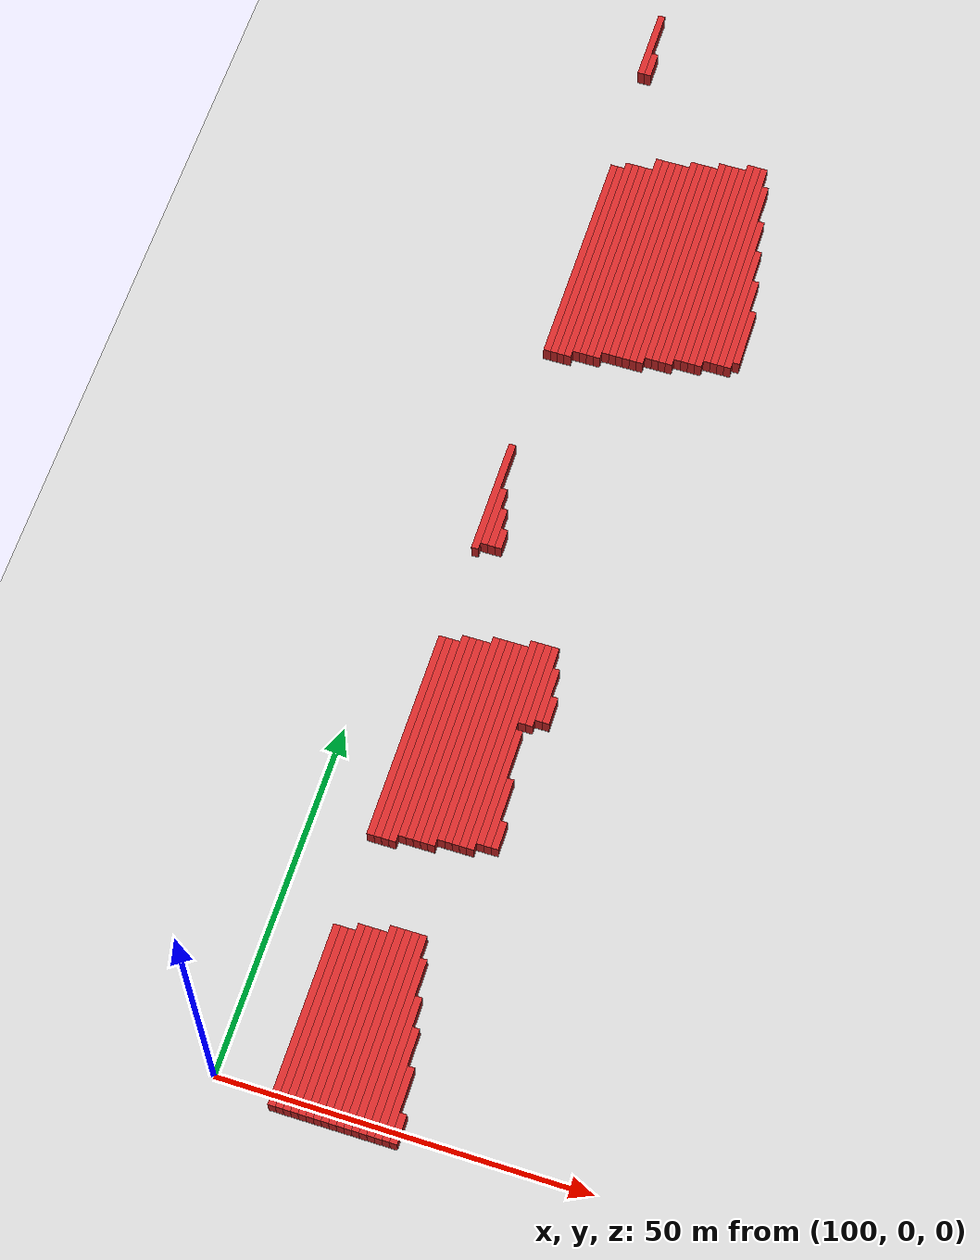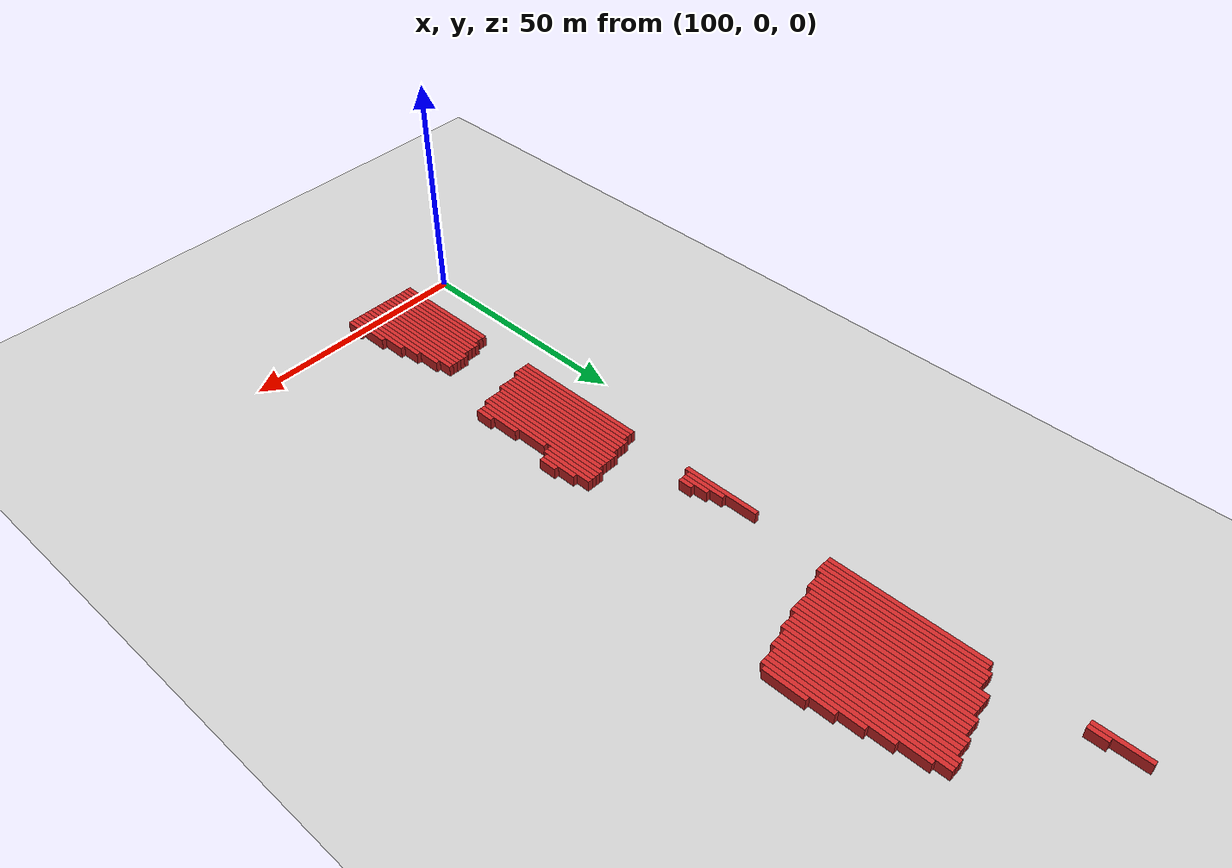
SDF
<sdf version="1.4">
 <world name="1_wall">
  <model name="ground_plane">
   <static>1</static>
   <link name="link">
    <collision name="collision">
     <geometry><plane><normal>0 0 1</normal><size>1000 1000</size></plane></geometry>
     <surface><friction><ode><mu>100</mu><mu2>50</mu2></ode></friction></surface>
    </collision>
    <visual name="visual">
     <cast_shadows>0</cast_shadows>
     <geometry><plane><normal>0 0 1</normal><size>10000 10000</size></plane></geometry>
     <material>
      <script><uri>file://media/materials/scripts/gazebo.material</uri><name>Gazebo/Grey</name></script>
     </material>
    </visual>
    <velocity_decay><linear>0</linear><angular>0</angular></velocity_decay>
   </link>
  </model>
  <model name="Wall_356">
   <static>1</static>
   <link name="Wall_356">
    <collision name="Wall_Collision_356">
     <geometry><box><size>11.0 1.0 2.5</size></box></geometry>
     <pose>0 0 1.25 0 -0 0</pose>
    </collision>
    <visual name="Wall_Visual_356">
     <pose>0 0 1.25 0 -0 0</pose>
     <geometry><box><size>11.0 1.0 2.5</size></box></geometry>
     <material>
      <script><uri>file://media/materials/scripts/gazebo.material</uri><name>Gazebo/Red</name></script>
     </material>
    </visual>
    <velocity_decay><linear>0</linear><angular>0</angular></velocity_decay>
    <pose>107.5 168.5 0 0 0 1.5707963267948966</pose>
   </link>
  </model>
  <model name="Wall_357">
   <static>1</static>
   <link name="Wall_357">
    <collision name="Wall_Collision_357">
     <geometry><box><size>25.0 1.0 2.5</size></box></geometry>
     <pose>0 0 1.25 0 -0 0</pose>
    </collision>
    <visual name="Wall_Visual_357">
     <pose>0 0 1.25 0 -0 0</pose>
     <geometry><box><size>25.0 1.0 2.5</size></box></geometry>
     <material>
      <script><uri>file://media/materials/scripts/gazebo.material</uri><name>Gazebo/Red</name></script>
     </material>
    </visual>
    <velocity_decay><linear>0</linear><angular>0</angular></velocity_decay>
    <pose>108.5 10.5 0 0 0 1.5707963267948966</pose>
   </link>
  </model>
  <model name="Wall_358">
   <static>1</static>
   <link name="Wall_358">
    <collision name="Wall_Collision_358">
     <geometry><box><size>30.0 1.0 2.5</size></box></geometry>
     <pose>0 0 1.25 0 -0 0</pose>
    </collision>
    <visual name="Wall_Visual_358">
     <pose>0 0 1.25 0 -0 0</pose>
     <geometry><box><size>30.0 1.0 2.5</size></box></geometry>
     <material>
      <script><uri>file://media/materials/scripts/gazebo.material</uri><name>Gazebo/Red</name></script>
     </material>
    </visual>
    <velocity_decay><linear>0</linear><angular>0</angular></velocity_decay>
    <pose>108.5 51.0 0 0 0 1.5707963267948966</pose>
   </link>
  </model>
  <model name="Wall_359">
   <static>1</static>
   <link name="Wall_359">
    <collision name="Wall_Collision_359">
     <geometry><box><size>17.0 1.0 2.5</size></box></geometry>
     <pose>0 0 1.25 0 -0 0</pose>
    </collision>
    <visual name="Wall_Visual_359">
     <pose>0 0 1.25 0 -0 0</pose>
     <geometry><box><size>17.0 1.0 2.5</size></box></geometry>
     <material>
      <script><uri>file://media/materials/scripts/gazebo.material</uri><name>Gazebo/Red</name></script>
     </material>
    </visual>
    <velocity_decay><linear>0</linear><angular>0</angular></velocity_decay>
    <pose>108.5 88.5 0 0 0 1.5707963267948966</pose>
   </link>
  </model>
  <model name="Wall_360">
   <static>1</static>
   <link name="Wall_360">
    <collision name="Wall_Collision_360">
     <geometry><box><size>33.0 1.0 2.5</size></box></geometry>
     <pose>0 0 1.25 0 -0 0</pose>
    </collision>
    <visual name="Wall_Visual_360">
     <pose>0 0 1.25 0 -0 0</pose>
     <geometry><box><size>33.0 1.0 2.5</size></box></geometry>
     <material>
      <script><uri>file://media/materials/scripts/gazebo.material</uri><name>Gazebo/Red</name></script>
     </material>
    </visual>
    <velocity_decay><linear>0</linear><angular>0</angular></velocity_decay>
    <pose>108.5 129.5 0 0 0 1.5707963267948966</pose>
   </link>
  </model>
  <model name="Wall_361">
   <static>1</static>
   <link name="Wall_361">
    <collision name="Wall_Collision_361">
     <geometry><box><size>4.0 1.0 2.5</size></box></geometry>
     <pose>0 0 1.25 0 -0 0</pose>
    </collision>
    <visual name="Wall_Visual_361">
     <pose>0 0 1.25 0 -0 0</pose>
     <geometry><box><size>4.0 1.0 2.5</size></box></geometry>
     <material>
      <script><uri>file://media/materials/scripts/gazebo.material</uri><name>Gazebo/Red</name></script>
     </material>
    </visual>
    <velocity_decay><linear>0</linear><angular>0</angular></velocity_decay>
    <pose>108.5 165.0 0 0 0 1.5707963267948966</pose>
   </link>
  </model>
  <model name="Wall_362">
   <static>1</static>
   <link name="Wall_362">
    <collision name="Wall_Collision_362">
     <geometry><box><size>25.0 1.0 2.5</size></box></geometry>
     <pose>0 0 1.25 0 -0 0</pose>
    </collision>
    <visual name="Wall_Visual_362">
     <pose>0 0 1.25 0 -0 0</pose>
     <geometry><box><size>25.0 1.0 2.5</size></box></geometry>
     <material>
      <script><uri>file://media/materials/scripts/gazebo.material</uri><name>Gazebo/Red</name></script>
     </material>
    </visual>
    <velocity_decay><linear>0</linear><angular>0</angular></velocity_decay>
    <pose>109.5 10.5 0 0 0 1.5707963267948966</pose>
   </link>
  </model>
  <model name="Wall_363">
   <static>1</static>
   <link name="Wall_363">
    <collision name="Wall_Collision_363">
     <geometry><box><size>30.0 1.0 2.5</size></box></geometry>
     <pose>0 0 1.25 0 -0 0</pose>
    </collision>
    <visual name="Wall_Visual_363">
     <pose>0 0 1.25 0 -0 0</pose>
     <geometry><box><size>30.0 1.0 2.5</size></box></geometry>
     <material>
      <script><uri>file://media/materials/scripts/gazebo.material</uri><name>Gazebo/Red</name></script>
     </material>
    </visual>
    <velocity_decay><linear>0</linear><angular>0</angular></velocity_decay>
    <pose>109.5 51.0 0 0 0 1.5707963267948966</pose>
   </link>
  </model>
  <model name="Wall_364">
   <static>1</static>
   <link name="Wall_364">
    <collision name="Wall_Collision_364">
     <geometry><box><size>9.0 1.0 2.5</size></box></geometry>
     <pose>0 0 1.25 0 -0 0</pose>
    </collision>
    <visual name="Wall_Visual_364">
     <pose>0 0 1.25 0 -0 0</pose>
     <geometry><box><size>9.0 1.0 2.5</size></box></geometry>
     <material>
      <script><uri>file://media/materials/scripts/gazebo.material</uri><name>Gazebo/Red</name></script>
     </material>
    </visual>
    <velocity_decay><linear>0</linear><angular>0</angular></velocity_decay>
    <pose>109.5 85.5 0 0 0 1.5707963267948966</pose>
   </link>
  </model>
  <model name="Wall_365">
   <static>1</static>
   <link name="Wall_365">
    <collision name="Wall_Collision_365">
     <geometry><box><size>33.0 1.0 2.5</size></box></geometry>
     <pose>0 0 1.25 0 -0 0</pose>
    </collision>
    <visual name="Wall_Visual_365">
     <pose>0 0 1.25 0 -0 0</pose>
     <geometry><box><size>33.0 1.0 2.5</size></box></geometry>
     <material>
      <script><uri>file://media/materials/scripts/gazebo.material</uri><name>Gazebo/Red</name></script>
     </material>
    </visual>
    <velocity_decay><linear>0</linear><angular>0</angular></velocity_decay>
    <pose>109.5 129.5 0 0 0 1.5707963267948966</pose>
   </link>
  </model>
  <model name="Wall_366">
   <static>1</static>
   <link name="Wall_366">
    <collision name="Wall_Collision_366">
     <geometry><box><size>25.0 1.0 2.5</size></box></geometry>
     <pose>0 0 1.25 0 -0 0</pose>
    </collision>
    <visual name="Wall_Visual_366">
     <pose>0 0 1.25 0 -0 0</pose>
     <geometry><box><size>25.0 1.0 2.5</size></box></geometry>
     <material>
      <script><uri>file://media/materials/scripts/gazebo.material</uri><name>Gazebo/Red</name></script>
     </material>
    </visual>
    <velocity_decay><linear>0</linear><angular>0</angular></velocity_decay>
    <pose>110.5 10.5 0 0 0 1.5707963267948966</pose>
   </link>
  </model>
  <model name="Wall_367">
   <static>1</static>
   <link name="Wall_367">
    <collision name="Wall_Collision_367">
     <geometry><box><size>30.0 1.0 2.5</size></box></geometry>
     <pose>0 0 1.25 0 -0 0</pose>
    </collision>
    <visual name="Wall_Visual_367">
     <pose>0 0 1.25 0 -0 0</pose>
     <geometry><box><size>30.0 1.0 2.5</size></box></geometry>
     <material>
      <script><uri>file://media/materials/scripts/gazebo.material</uri><name>Gazebo/Red</name></script>
     </material>
    </visual>
    <velocity_decay><linear>0</linear><angular>0</angular></velocity_decay>
    <pose>110.5 51.0 0 0 0 1.5707963267948966</pose>
   </link>
  </model>
  <model name="Wall_368">
   <static>1</static>
   <link name="Wall_368">
    <collision name="Wall_Collision_368">
     <geometry><box><size>6.0 1.0 2.5</size></box></geometry>
     <pose>0 0 1.25 0 -0 0</pose>
    </collision>
    <visual name="Wall_Visual_368">
     <pose>0 0 1.25 0 -0 0</pose>
     <geometry><box><size>6.0 1.0 2.5</size></box></geometry>
     <material>
      <script><uri>file://media/materials/scripts/gazebo.material</uri><name>Gazebo/Red</name></script>
     </material>
    </visual>
    <velocity_decay><linear>0</linear><angular>0</angular></velocity_decay>
    <pose>110.5 84.0 0 0 0 1.5707963267948966</pose>
   </link>
  </model>
  <model name="Wall_369">
   <static>1</static>
   <link name="Wall_369">
    <collision name="Wall_Collision_369">
     <geometry><box><size>34.0 1.0 2.5</size></box></geometry>
     <pose>0 0 1.25 0 -0 0</pose>
    </collision>
    <visual name="Wall_Visual_369">
     <pose>0 0 1.25 0 -0 0</pose>
     <geometry><box><size>34.0 1.0 2.5</size></box></geometry>
     <material>
      <script><uri>file://media/materials/scripts/gazebo.material</uri><name>Gazebo/Red</name></script>
     </material>
    </visual>
    <velocity_decay><linear>0</linear><angular>0</angular></velocity_decay>
    <pose>110.5 130.0 0 0 0 1.5707963267948966</pose>
   </link>
  </model>
  <model name="Wall_370">
   <static>1</static>
   <link name="Wall_370">
    <collision name="Wall_Collision_370">
     <geometry><box><size>26.0 1.0 2.5</size></box></geometry>
     <pose>0 0 1.25 0 -0 0</pose>
    </collision>
    <visual name="Wall_Visual_370">
     <pose>0 0 1.25 0 -0 0</pose>
     <geometry><box><size>26.0 1.0 2.5</size></box></geometry>
     <material>
      <script><uri>file://media/materials/scripts/gazebo.material</uri><name>Gazebo/Red</name></script>
     </material>
    </visual>
    <velocity_decay><linear>0</linear><angular>0</angular></velocity_decay>
    <pose>111.5 11.0 0 0 0 1.5707963267948966</pose>
   </link>
  </model>
  <model name="Wall_371">
   <static>1</static>
   <link name="Wall_371">
    <collision name="Wall_Collision_371">
     <geometry><box><size>31.0 1.0 2.5</size></box></geometry>
     <pose>0 0 1.25 0 -0 0</pose>
    </collision>
    <visual name="Wall_Visual_371">
     <pose>0 0 1.25 0 -0 0</pose>
     <geometry><box><size>31.0 1.0 2.5</size></box></geometry>
     <material>
      <script><uri>file://media/materials/scripts/gazebo.material</uri><name>Gazebo/Red</name></script>
     </material>
    </visual>
    <velocity_decay><linear>0</linear><angular>0</angular></velocity_decay>
    <pose>111.5 51.5 0 0 0 1.5707963267948966</pose>
   </link>
  </model>
  <model name="Wall_372">
   <static>1</static>
   <link name="Wall_372">
    <collision name="Wall_Collision_372">
     <geometry><box><size>3.0 1.0 2.5</size></box></geometry>
     <pose>0 0 1.25 0 -0 0</pose>
    </collision>
    <visual name="Wall_Visual_372">
     <pose>0 0 1.25 0 -0 0</pose>
     <geometry><box><size>3.0 1.0 2.5</size></box></geometry>
     <material>
      <script><uri>file://media/materials/scripts/gazebo.material</uri><name>Gazebo/Red</name></script>
     </material>
    </visual>
    <velocity_decay><linear>0</linear><angular>0</angular></velocity_decay>
    <pose>111.5 82.5 0 0 0 1.5707963267948966</pose>
   </link>
  </model>
  <model name="Wall_373">
   <static>1</static>
   <link name="Wall_373">
    <collision name="Wall_Collision_373">
     <geometry><box><size>34.0 1.0 2.5</size></box></geometry>
     <pose>0 0 1.25 0 -0 0</pose>
    </collision>
    <visual name="Wall_Visual_373">
     <pose>0 0 1.25 0 -0 0</pose>
     <geometry><box><size>34.0 1.0 2.5</size></box></geometry>
     <material>
      <script><uri>file://media/materials/scripts/gazebo.material</uri><name>Gazebo/Red</name></script>
     </material>
    </visual>
    <velocity_decay><linear>0</linear><angular>0</angular></velocity_decay>
    <pose>111.5 130.0 0 0 0 1.5707963267948966</pose>
   </link>
  </model>
  <model name="Wall_374">
   <static>1</static>
   <link name="Wall_374">
    <collision name="Wall_Collision_374">
     <geometry><box><size>26.0 1.0 2.5</size></box></geometry>
     <pose>0 0 1.25 0 -0 0</pose>
    </collision>
    <visual name="Wall_Visual_374">
     <pose>0 0 1.25 0 -0 0</pose>
     <geometry><box><size>26.0 1.0 2.5</size></box></geometry>
     <material>
      <script><uri>file://media/materials/scripts/gazebo.material</uri><name>Gazebo/Red</name></script>
     </material>
    </visual>
    <velocity_decay><linear>0</linear><angular>0</angular></velocity_decay>
    <pose>112.5 11.0 0 0 0 1.5707963267948966</pose>
   </link>
  </model>
  <model name="Wall_375">
   <static>1</static>
   <link name="Wall_375">
    <collision name="Wall_Collision_375">
     <geometry><box><size>30.0 1.0 2.5</size></box></geometry>
     <pose>0 0 1.25 0 -0 0</pose>
    </collision>
    <visual name="Wall_Visual_375">
     <pose>0 0 1.25 0 -0 0</pose>
     <geometry><box><size>30.0 1.0 2.5</size></box></geometry>
     <material>
      <script><uri>file://media/materials/scripts/gazebo.material</uri><name>Gazebo/Red</name></script>
     </material>
    </visual>
    <velocity_decay><linear>0</linear><angular>0</angular></velocity_decay>
    <pose>112.5 52.0 0 0 0 1.5707963267948966</pose>
   </link>
  </model>
  <model name="Wall_376">
   <static>1</static>
   <link name="Wall_376">
    <collision name="Wall_Collision_376">
     <geometry><box><size>33.0 1.0 2.5</size></box></geometry>
     <pose>0 0 1.25 0 -0 0</pose>
    </collision>
    <visual name="Wall_Visual_376">
     <pose>0 0 1.25 0 -0 0</pose>
     <geometry><box><size>33.0 1.0 2.5</size></box></geometry>
     <material>
      <script><uri>file://media/materials/scripts/gazebo.material</uri><name>Gazebo/Red</name></script>
     </material>
    </visual>
    <velocity_decay><linear>0</linear><angular>0</angular></velocity_decay>
    <pose>112.5 130.5 0 0 0 1.5707963267948966</pose>
   </link>
  </model>
  <model name="Wall_377">
   <static>1</static>
   <link name="Wall_377">
    <collision name="Wall_Collision_377">
     <geometry><box><size>26.0 1.0 2.5</size></box></geometry>
     <pose>0 0 1.25 0 -0 0</pose>
    </collision>
    <visual name="Wall_Visual_377">
     <pose>0 0 1.25 0 -0 0</pose>
     <geometry><box><size>26.0 1.0 2.5</size></box></geometry>
     <material>
      <script><uri>file://media/materials/scripts/gazebo.material</uri><name>Gazebo/Red</name></script>
     </material>
    </visual>
    <velocity_decay><linear>0</linear><angular>0</angular></velocity_decay>
    <pose>113.5 11.0 0 0 0 1.5707963267948966</pose>
   </link>
  </model>
  <model name="Wall_378">
   <static>1</static>
   <link name="Wall_378">
    <collision name="Wall_Collision_378">
     <geometry><box><size>30.0 1.0 2.5</size></box></geometry>
     <pose>0 0 1.25 0 -0 0</pose>
    </collision>
    <visual name="Wall_Visual_378">
     <pose>0 0 1.25 0 -0 0</pose>
     <geometry><box><size>30.0 1.0 2.5</size></box></geometry>
     <material>
      <script><uri>file://media/materials/scripts/gazebo.material</uri><name>Gazebo/Red</name></script>
     </material>
    </visual>
    <velocity_decay><linear>0</linear><angular>0</angular></velocity_decay>
    <pose>113.5 52.0 0 0 0 1.5707963267948966</pose>
   </link>
  </model>
  <model name="Wall_379">
   <static>1</static>
   <link name="Wall_379">
    <collision name="Wall_Collision_379">
     <geometry><box><size>33.0 1.0 2.5</size></box></geometry>
     <pose>0 0 1.25 0 -0 0</pose>
    </collision>
    <visual name="Wall_Visual_379">
     <pose>0 0 1.25 0 -0 0</pose>
     <geometry><box><size>33.0 1.0 2.5</size></box></geometry>
     <material>
      <script><uri>file://media/materials/scripts/gazebo.material</uri><name>Gazebo/Red</name></script>
     </material>
    </visual>
    <velocity_decay><linear>0</linear><angular>0</angular></velocity_decay>
    <pose>113.5 130.5 0 0 0 1.5707963267948966</pose>
   </link>
  </model>
  <model name="Wall_380">
   <static>1</static>
   <link name="Wall_380">
    <collision name="Wall_Collision_380">
     <geometry><box><size>26.0 1.0 2.5</size></box></geometry>
     <pose>0 0 1.25 0 -0 0</pose>
    </collision>
    <visual name="Wall_Visual_380">
     <pose>0 0 1.25 0 -0 0</pose>
     <geometry><box><size>26.0 1.0 2.5</size></box></geometry>
     <material>
      <script><uri>file://media/materials/scripts/gazebo.material</uri><name>Gazebo/Red</name></script>
     </material>
    </visual>
    <velocity_decay><linear>0</linear><angular>0</angular></velocity_decay>
    <pose>114.5 11.0 0 0 0 1.5707963267948966</pose>
   </link>
  </model>
  <model name="Wall_381">
   <static>1</static>
   <link name="Wall_381">
    <collision name="Wall_Collision_381">
     <geometry><box><size>30.0 1.0 2.5</size></box></geometry>
     <pose>0 0 1.25 0 -0 0</pose>
    </collision>
    <visual name="Wall_Visual_381">
     <pose>0 0 1.25 0 -0 0</pose>
     <geometry><box><size>30.0 1.0 2.5</size></box></geometry>
     <material>
      <script><uri>file://media/materials/scripts/gazebo.material</uri><name>Gazebo/Red</name></script>
     </material>
    </visual>
    <velocity_decay><linear>0</linear><angular>0</angular></velocity_decay>
    <pose>114.5 52.0 0 0 0 1.5707963267948966</pose>
   </link>
  </model>
  <model name="Wall_382">
   <static>1</static>
   <link name="Wall_382">
    <collision name="Wall_Collision_382">
     <geometry><box><size>35.0 1.0 2.5</size></box></geometry>
     <pose>0 0 1.25 0 -0 0</pose>
    </collision>
    <visual name="Wall_Visual_382">
     <pose>0 0 1.25 0 -0 0</pose>
     <geometry><box><size>35.0 1.0 2.5</size></box></geometry>
     <material>
      <script><uri>file://media/materials/scripts/gazebo.material</uri><name>Gazebo/Red</name></script>
     </material>
    </visual>
    <velocity_decay><linear>0</linear><angular>0</angular></velocity_decay>
    <pose>114.5 131.5 0 0 0 1.5707963267948966</pose>
   </link>
  </model>
  <model name="Wall_383">
   <static>1</static>
   <link name="Wall_383">
    <collision name="Wall_Collision_383">
     <geometry><box><size>27.0 1.0 2.5</size></box></geometry>
     <pose>0 0 1.25 0 -0 0</pose>
    </collision>
    <visual name="Wall_Visual_383">
     <pose>0 0 1.25 0 -0 0</pose>
     <geometry><box><size>27.0 1.0 2.5</size></box></geometry>
     <material>
      <script><uri>file://media/materials/scripts/gazebo.material</uri><name>Gazebo/Red</name></script>
     </material>
    </visual>
    <velocity_decay><linear>0</linear><angular>0</angular></velocity_decay>
    <pose>115.5 11.5 0 0 0 1.5707963267948966</pose>
   </link>
  </model>
  <model name="Wall_384">
   <static>1</static>
   <link name="Wall_384">
    <collision name="Wall_Collision_384">
     <geometry><box><size>31.0 1.0 2.5</size></box></geometry>
     <pose>0 0 1.25 0 -0 0</pose>
    </collision>
    <visual name="Wall_Visual_384">
     <pose>0 0 1.25 0 -0 0</pose>
     <geometry><box><size>31.0 1.0 2.5</size></box></geometry>
     <material>
      <script><uri>file://media/materials/scripts/gazebo.material</uri><name>Gazebo/Red</name></script>
     </material>
    </visual>
    <velocity_decay><linear>0</linear><angular>0</angular></velocity_decay>
    <pose>115.5 52.5 0 0 0 1.5707963267948966</pose>
   </link>
  </model>
  <model name="Wall_385">
   <static>1</static>
   <link name="Wall_385">
    <collision name="Wall_Collision_385">
     <geometry><box><size>35.0 1.0 2.5</size></box></geometry>
     <pose>0 0 1.25 0 -0 0</pose>
    </collision>
    <visual name="Wall_Visual_385">
     <pose>0 0 1.25 0 -0 0</pose>
     <geometry><box><size>35.0 1.0 2.5</size></box></geometry>
     <material>
      <script><uri>file://media/materials/scripts/gazebo.material</uri><name>Gazebo/Red</name></script>
     </material>
    </visual>
    <velocity_decay><linear>0</linear><angular>0</angular></velocity_decay>
    <pose>115.5 131.5 0 0 0 1.5707963267948966</pose>
   </link>
  </model>
  <model name="Wall_386">
   <static>1</static>
   <link name="Wall_386">
    <collision name="Wall_Collision_386">
     <geometry><box><size>27.0 1.0 2.5</size></box></geometry>
     <pose>0 0 1.25 0 -0 0</pose>
    </collision>
    <visual name="Wall_Visual_386">
     <pose>0 0 1.25 0 -0 0</pose>
     <geometry><box><size>27.0 1.0 2.5</size></box></geometry>
     <material>
      <script><uri>file://media/materials/scripts/gazebo.material</uri><name>Gazebo/Red</name></script>
     </material>
    </visual>
    <velocity_decay><linear>0</linear><angular>0</angular></velocity_decay>
    <pose>116.5 11.5 0 0 0 1.5707963267948966</pose>
   </link>
  </model>
  <model name="Wall_387">
   <static>1</static>
   <link name="Wall_387">
    <collision name="Wall_Collision_387">
     <geometry><box><size>31.0 1.0 2.5</size></box></geometry>
     <pose>0 0 1.25 0 -0 0</pose>
    </collision>
    <visual name="Wall_Visual_387">
     <pose>0 0 1.25 0 -0 0</pose>
     <geometry><box><size>31.0 1.0 2.5</size></box></geometry>
     <material>
      <script><uri>file://media/materials/scripts/gazebo.material</uri><name>Gazebo/Red</name></script>
     </material>
    </visual>
    <velocity_decay><linear>0</linear><angular>0</angular></velocity_decay>
    <pose>116.5 52.5 0 0 0 1.5707963267948966</pose>
   </link>
  </model>
  <model name="Wall_388">
   <static>1</static>
   <link name="Wall_388">
    <collision name="Wall_Collision_388">
     <geometry><box><size>34.0 1.0 2.5</size></box></geometry>
     <pose>0 0 1.25 0 -0 0</pose>
    </collision>
    <visual name="Wall_Visual_388">
     <pose>0 0 1.25 0 -0 0</pose>
     <geometry><box><size>34.0 1.0 2.5</size></box></geometry>
     <material>
      <script><uri>file://media/materials/scripts/gazebo.material</uri><name>Gazebo/Red</name></script>
     </material>
    </visual>
    <velocity_decay><linear>0</linear><angular>0</angular></velocity_decay>
    <pose>116.5 132.0 0 0 0 1.5707963267948966</pose>
   </link>
  </model>
  <model name="Wall_389">
   <static>1</static>
   <link name="Wall_389">
    <collision name="Wall_Collision_389">
     <geometry><box><size>27.0 1.0 2.5</size></box></geometry>
     <pose>0 0 1.25 0 -0 0</pose>
    </collision>
    <visual name="Wall_Visual_389">
     <pose>0 0 1.25 0 -0 0</pose>
     <geometry><box><size>27.0 1.0 2.5</size></box></geometry>
     <material>
      <script><uri>file://media/materials/scripts/gazebo.material</uri><name>Gazebo/Red</name></script>
     </material>
    </visual>
    <velocity_decay><linear>0</linear><angular>0</angular></velocity_decay>
    <pose>117.5 11.5 0 0 0 1.5707963267948966</pose>
   </link>
  </model>
  <model name="Wall_390">
   <static>1</static>
   <link name="Wall_390">
    <collision name="Wall_Collision_390">
     <geometry><box><size>30.0 1.0 2.5</size></box></geometry>
     <pose>0 0 1.25 0 -0 0</pose>
    </collision>
    <visual name="Wall_Visual_390">
     <pose>0 0 1.25 0 -0 0</pose>
     <geometry><box><size>30.0 1.0 2.5</size></box></geometry>
     <material>
      <script><uri>file://media/materials/scripts/gazebo.material</uri><name>Gazebo/Red</name></script>
     </material>
    </visual>
    <velocity_decay><linear>0</linear><angular>0</angular></velocity_decay>
    <pose>117.5 53.0 0 0 0 1.5707963267948966</pose>
   </link>
  </model>
  <model name="Wall_391">
   <static>1</static>
   <link name="Wall_391">
    <collision name="Wall_Collision_391">
     <geometry><box><size>34.0 1.0 2.5</size></box></geometry>
     <pose>0 0 1.25 0 -0 0</pose>
    </collision>
    <visual name="Wall_Visual_391">
     <pose>0 0 1.25 0 -0 0</pose>
     <geometry><box><size>34.0 1.0 2.5</size></box></geometry>
     <material>
      <script><uri>file://media/materials/scripts/gazebo.material</uri><name>Gazebo/Red</name></script>
     </material>
    </visual>
    <velocity_decay><linear>0</linear><angular>0</angular></velocity_decay>
    <pose>117.5 132.0 0 0 0 1.5707963267948966</pose>
   </link>
  </model>
  <model name="Wall_392">
   <static>1</static>
   <link name="Wall_392">
    <collision name="Wall_Collision_392">
     <geometry><box><size>27.0 1.0 2.5</size></box></geometry>
     <pose>0 0 1.25 0 -0 0</pose>
    </collision>
    <visual name="Wall_Visual_392">
     <pose>0 0 1.25 0 -0 0</pose>
     <geometry><box><size>27.0 1.0 2.5</size></box></geometry>
     <material>
      <script><uri>file://media/materials/scripts/gazebo.material</uri><name>Gazebo/Red</name></script>
     </material>
    </visual>
    <velocity_decay><linear>0</linear><angular>0</angular></velocity_decay>
    <pose>118.5 11.5 0 0 0 1.5707963267948966</pose>
   </link>
  </model>
  <model name="Wall_393">
   <static>1</static>
   <link name="Wall_393">
    <collision name="Wall_Collision_393">
     <geometry><box><size>30.0 1.0 2.5</size></box></geometry>
     <pose>0 0 1.25 0 -0 0</pose>
    </collision>
    <visual name="Wall_Visual_393">
     <pose>0 0 1.25 0 -0 0</pose>
     <geometry><box><size>30.0 1.0 2.5</size></box></geometry>
     <material>
      <script><uri>file://media/materials/scripts/gazebo.material</uri><name>Gazebo/Red</name></script>
     </material>
    </visual>
    <velocity_decay><linear>0</linear><angular>0</angular></velocity_decay>
    <pose>118.5 53.0 0 0 0 1.5707963267948966</pose>
   </link>
  </model>
  <model name="Wall_394">
   <static>1</static>
   <link name="Wall_394">
    <collision name="Wall_Collision_394">
     <geometry><box><size>34.0 1.0 2.5</size></box></geometry>
     <pose>0 0 1.25 0 -0 0</pose>
    </collision>
    <visual name="Wall_Visual_394">
     <pose>0 0 1.25 0 -0 0</pose>
     <geometry><box><size>34.0 1.0 2.5</size></box></geometry>
     <material>
      <script><uri>file://media/materials/scripts/gazebo.material</uri><name>Gazebo/Red</name></script>
     </material>
    </visual>
    <velocity_decay><linear>0</linear><angular>0</angular></velocity_decay>
    <pose>118.5 132.0 0 0 0 1.5707963267948966</pose>
   </link>
  </model>
  <model name="Wall_395">
   <static>1</static>
   <link name="Wall_395">
    <collision name="Wall_Collision_395">
     <geometry><box><size>27.0 1.0 2.5</size></box></geometry>
     <pose>0 0 1.25 0 -0 0</pose>
    </collision>
    <visual name="Wall_Visual_395">
     <pose>0 0 1.25 0 -0 0</pose>
     <geometry><box><size>27.0 1.0 2.5</size></box></geometry>
     <material>
      <script><uri>file://media/materials/scripts/gazebo.material</uri><name>Gazebo/Red</name></script>
     </material>
    </visual>
    <velocity_decay><linear>0</linear><angular>0</angular></velocity_decay>
    <pose>119.5 11.5 0 0 0 1.5707963267948966</pose>
   </link>
  </model>
  <model name="Wall_396">
   <static>1</static>
   <link name="Wall_396">
    <collision name="Wall_Collision_396">
     <geometry><box><size>30.0 1.0 2.5</size></box></geometry>
     <pose>0 0 1.25 0 -0 0</pose>
    </collision>
    <visual name="Wall_Visual_396">
     <pose>0 0 1.25 0 -0 0</pose>
     <geometry><box><size>30.0 1.0 2.5</size></box></geometry>
     <material>
      <script><uri>file://media/materials/scripts/gazebo.material</uri><name>Gazebo/Red</name></script>
     </material>
    </visual>
    <velocity_decay><linear>0</linear><angular>0</angular></velocity_decay>
    <pose>119.5 53.0 0 0 0 1.5707963267948966</pose>
   </link>
  </model>
  <model name="Wall_397">
   <static>1</static>
   <link name="Wall_397">
    <collision name="Wall_Collision_397">
     <geometry><box><size>35.0 1.0 2.5</size></box></geometry>
     <pose>0 0 1.25 0 -0 0</pose>
    </collision>
    <visual name="Wall_Visual_397">
     <pose>0 0 1.25 0 -0 0</pose>
     <geometry><box><size>35.0 1.0 2.5</size></box></geometry>
     <material>
      <script><uri>file://media/materials/scripts/gazebo.material</uri><name>Gazebo/Red</name></script>
     </material>
    </visual>
    <velocity_decay><linear>0</linear><angular>0</angular></velocity_decay>
    <pose>119.5 132.5 0 0 0 1.5707963267948966</pose>
   </link>
  </model>
  <model name="Wall_398">
   <static>1</static>
   <link name="Wall_398">
    <collision name="Wall_Collision_398">
     <geometry><box><size>24.0 1.0 2.5</size></box></geometry>
     <pose>0 0 1.25 0 -0 0</pose>
    </collision>
    <visual name="Wall_Visual_398">
     <pose>0 0 1.25 0 -0 0</pose>
     <geometry><box><size>24.0 1.0 2.5</size></box></geometry>
     <material>
      <script><uri>file://media/materials/scripts/gazebo.material</uri><name>Gazebo/Red</name></script>
     </material>
    </visual>
    <velocity_decay><linear>0</linear><angular>0</angular></velocity_decay>
    <pose>120.5 10.0 0 0 0 1.5707963267948966</pose>
   </link>
  </model>
  <model name="Wall_399">
   <static>1</static>
   <link name="Wall_399">
    <collision name="Wall_Collision_399">
     <geometry><box><size>31.0 1.0 2.5</size></box></geometry>
     <pose>0 0 1.25 0 -0 0</pose>
    </collision>
    <visual name="Wall_Visual_399">
     <pose>0 0 1.25 0 -0 0</pose>
     <geometry><box><size>31.0 1.0 2.5</size></box></geometry>
     <material>
      <script><uri>file://media/materials/scripts/gazebo.material</uri><name>Gazebo/Red</name></script>
     </material>
    </visual>
    <velocity_decay><linear>0</linear><angular>0</angular></velocity_decay>
    <pose>120.5 53.5 0 0 0 1.5707963267948966</pose>
   </link>
  </model>
  <model name="Wall_400">
   <static>1</static>
   <link name="Wall_400">
    <collision name="Wall_Collision_400">
     <geometry><box><size>35.0 1.0 2.5</size></box></geometry>
     <pose>0 0 1.25 0 -0 0</pose>
    </collision>
    <visual name="Wall_Visual_400">
     <pose>0 0 1.25 0 -0 0</pose>
     <geometry><box><size>35.0 1.0 2.5</size></box></geometry>
     <material>
      <script><uri>file://media/materials/scripts/gazebo.material</uri><name>Gazebo/Red</name></script>
     </material>
    </visual>
    <velocity_decay><linear>0</linear><angular>0</angular></velocity_decay>
    <pose>120.5 132.5 0 0 0 1.5707963267948966</pose>
   </link>
  </model>
  <model name="Wall_401">
   <static>1</static>
   <link name="Wall_401">
    <collision name="Wall_Collision_401">
     <geometry><box><size>19.0 1.0 2.5</size></box></geometry>
     <pose>0 0 1.25 0 -0 0</pose>
    </collision>
    <visual name="Wall_Visual_401">
     <pose>0 0 1.25 0 -0 0</pose>
     <geometry><box><size>19.0 1.0 2.5</size></box></geometry>
     <material>
      <script><uri>file://media/materials/scripts/gazebo.material</uri><name>Gazebo/Red</name></script>
     </material>
    </visual>
    <velocity_decay><linear>0</linear><angular>0</angular></velocity_decay>
    <pose>121.5 7.5 0 0 0 1.5707963267948966</pose>
   </link>
  </model>
  <model name="Wall_402">
   <static>1</static>
   <link name="Wall_402">
    <collision name="Wall_Collision_402">
     <geometry><box><size>31.0 1.0 2.5</size></box></geometry>
     <pose>0 0 1.25 0 -0 0</pose>
    </collision>
    <visual name="Wall_Visual_402">
     <pose>0 0 1.25 0 -0 0</pose>
     <geometry><box><size>31.0 1.0 2.5</size></box></geometry>
     <material>
      <script><uri>file://media/materials/scripts/gazebo.material</uri><name>Gazebo/Red</name></script>
     </material>
    </visual>
    <velocity_decay><linear>0</linear><angular>0</angular></velocity_decay>
    <pose>121.5 53.5 0 0 0 1.5707963267948966</pose>
   </link>
  </model>
  <model name="Wall_403">
   <static>1</static>
   <link name="Wall_403">
    <collision name="Wall_Collision_403">
     <geometry><box><size>35.0 1.0 2.5</size></box></geometry>
     <pose>0 0 1.25 0 -0 0</pose>
    </collision>
    <visual name="Wall_Visual_403">
     <pose>0 0 1.25 0 -0 0</pose>
     <geometry><box><size>35.0 1.0 2.5</size></box></geometry>
     <material>
      <script><uri>file://media/materials/scripts/gazebo.material</uri><name>Gazebo/Red</name></script>
     </material>
    </visual>
    <velocity_decay><linear>0</linear><angular>0</angular></velocity_decay>
    <pose>121.5 132.5 0 0 0 1.5707963267948966</pose>
   </link>
  </model>
  <model name="Wall_404">
   <static>1</static>
   <link name="Wall_404">
    <collision name="Wall_Collision_404">
     <geometry><box><size>15.0 1.0 2.5</size></box></geometry>
     <pose>0 0 1.25 0 -0 0</pose>
    </collision>
    <visual name="Wall_Visual_404">
     <pose>0 0 1.25 0 -0 0</pose>
     <geometry><box><size>15.0 1.0 2.5</size></box></geometry>
     <material>
      <script><uri>file://media/materials/scripts/gazebo.material</uri><name>Gazebo/Red</name></script>
     </material>
    </visual>
    <velocity_decay><linear>0</linear><angular>0</angular></velocity_decay>
    <pose>122.5 5.5 0 0 0 1.5707963267948966</pose>
   </link>
  </model>
  <model name="Wall_405">
   <static>1</static>
   <link name="Wall_405">
    <collision name="Wall_Collision_405">
     <geometry><box><size>17.0 1.0 2.5</size></box></geometry>
     <pose>0 0 1.25 0 -0 0</pose>
    </collision>
    <visual name="Wall_Visual_405">
     <pose>0 0 1.25 0 -0 0</pose>
     <geometry><box><size>17.0 1.0 2.5</size></box></geometry>
     <material>
      <script><uri>file://media/materials/scripts/gazebo.material</uri><name>Gazebo/Red</name></script>
     </material>
    </visual>
    <velocity_decay><linear>0</linear><angular>0</angular></velocity_decay>
    <pose>122.5 47.5 0 0 0 1.5707963267948966</pose>
   </link>
  </model>
  <model name="Wall_406">
   <static>1</static>
   <link name="Wall_406">
    <collision name="Wall_Collision_406">
     <geometry><box><size>12.0 1.0 2.5</size></box></geometry>
     <pose>0 0 1.25 0 -0 0</pose>
    </collision>
    <visual name="Wall_Visual_406">
     <pose>0 0 1.25 0 -0 0</pose>
     <geometry><box><size>12.0 1.0 2.5</size></box></geometry>
     <material>
      <script><uri>file://media/materials/scripts/gazebo.material</uri><name>Gazebo/Red</name></script>
     </material>
    </visual>
    <velocity_decay><linear>0</linear><angular>0</angular></velocity_decay>
    <pose>122.5 63.0 0 0 0 1.5707963267948966</pose>
   </link>
  </model>
  <model name="Wall_407">
   <static>1</static>
   <link name="Wall_407">
    <collision name="Wall_Collision_407">
     <geometry><box><size>34.0 1.0 2.5</size></box></geometry>
     <pose>0 0 1.25 0 -0 0</pose>
    </collision>
    <visual name="Wall_Visual_407">
     <pose>0 0 1.25 0 -0 0</pose>
     <geometry><box><size>34.0 1.0 2.5</size></box></geometry>
     <material>
      <script><uri>file://media/materials/scripts/gazebo.material</uri><name>Gazebo/Red</name></script>
     </material>
    </visual>
    <velocity_decay><linear>0</linear><angular>0</angular></velocity_decay>
    <pose>122.5 133.0 0 0 0 1.5707963267948966</pose>
   </link>
  </model>
  <model name="Wall_408">
   <static>1</static>
   <link name="Wall_408">
    <collision name="Wall_Collision_408">
     <geometry><box><size>10.0 1.0 2.5</size></box></geometry>
     <pose>0 0 1.25 0 -0 0</pose>
    </collision>
    <visual name="Wall_Visual_408">
     <pose>0 0 1.25 0 -0 0</pose>
     <geometry><box><size>10.0 1.0 2.5</size></box></geometry>
     <material>
      <script><uri>file://media/materials/scripts/gazebo.material</uri><name>Gazebo/Red</name></script>
     </material>
    </visual>
    <velocity_decay><linear>0</linear><angular>0</angular></velocity_decay>
    <pose>123.5 3.0 0 0 0 1.5707963267948966</pose>
   </link>
  </model>
  <model name="Wall_409">
   <static>1</static>
   <link name="Wall_409">
    <collision name="Wall_Collision_409">
     <geometry><box><size>10.0 1.0 2.5</size></box></geometry>
     <pose>0 0 1.25 0 -0 0</pose>
    </collision>
    <visual name="Wall_Visual_409">
     <pose>0 0 1.25 0 -0 0</pose>
     <geometry><box><size>10.0 1.0 2.5</size></box></geometry>
     <material>
      <script><uri>file://media/materials/scripts/gazebo.material</uri><name>Gazebo/Red</name></script>
     </material>
    </visual>
    <velocity_decay><linear>0</linear><angular>0</angular></velocity_decay>
    <pose>123.5 44.0 0 0 0 1.5707963267948966</pose>
   </link>
  </model>
  <model name="Wall_410">
   <static>1</static>
   <link name="Wall_410">
    <collision name="Wall_Collision_410">
     <geometry><box><size>12.0 1.0 2.5</size></box></geometry>
     <pose>0 0 1.25 0 -0 0</pose>
    </collision>
    <visual name="Wall_Visual_410">
     <pose>0 0 1.25 0 -0 0</pose>
     <geometry><box><size>12.0 1.0 2.5</size></box></geometry>
     <material>
      <script><uri>file://media/materials/scripts/gazebo.material</uri><name>Gazebo/Red</name></script>
     </material>
    </visual>
    <velocity_decay><linear>0</linear><angular>0</angular></velocity_decay>
    <pose>123.5 63.0 0 0 0 1.5707963267948966</pose>
   </link>
  </model>
  <model name="Wall_411">
   <static>1</static>
   <link name="Wall_411">
    <collision name="Wall_Collision_411">
     <geometry><box><size>35.0 1.0 2.5</size></box></geometry>
     <pose>0 0 1.25 0 -0 0</pose>
    </collision>
    <visual name="Wall_Visual_411">
     <pose>0 0 1.25 0 -0 0</pose>
     <geometry><box><size>35.0 1.0 2.5</size></box></geometry>
     <material>
      <script><uri>file://media/materials/scripts/gazebo.material</uri><name>Gazebo/Red</name></script>
     </material>
    </visual>
    <velocity_decay><linear>0</linear><angular>0</angular></velocity_decay>
    <pose>123.5 133.5 0 0 0 1.5707963267948966</pose>
   </link>
  </model>
  <model name="Wall_412">
   <static>1</static>
   <link name="Wall_412">
    <collision name="Wall_Collision_412">
     <geometry><box><size>4.0 1.0 2.5</size></box></geometry>
     <pose>0 0 1.25 0 -0 0</pose>
    </collision>
    <visual name="Wall_Visual_412">
     <pose>0 0 1.25 0 -0 0</pose>
     <geometry><box><size>4.0 1.0 2.5</size></box></geometry>
     <material>
      <script><uri>file://media/materials/scripts/gazebo.material</uri><name>Gazebo/Red</name></script>
     </material>
    </visual>
    <velocity_decay><linear>0</linear><angular>0</angular></velocity_decay>
    <pose>124.5 0.0 0 0 0 1.5707963267948966</pose>
   </link>
  </model>
  <model name="Wall_413">
   <static>1</static>
   <link name="Wall_413">
    <collision name="Wall_Collision_413">
     <geometry><box><size>4.0 1.0 2.5</size></box></geometry>
     <pose>0 0 1.25 0 -0 0</pose>
    </collision>
    <visual name="Wall_Visual_413">
     <pose>0 0 1.25 0 -0 0</pose>
     <geometry><box><size>4.0 1.0 2.5</size></box></geometry>
     <material>
      <script><uri>file://media/materials/scripts/gazebo.material</uri><name>Gazebo/Red</name></script>
     </material>
    </visual>
    <velocity_decay><linear>0</linear><angular>0</angular></velocity_decay>
    <pose>124.5 41.0 0 0 0 1.5707963267948966</pose>
   </link>
  </model>
  <model name="Wall_414">
   <static>1</static>
   <link name="Wall_414">
    <collision name="Wall_Collision_414">
     <geometry><box><size>8.0 1.0 2.5</size></box></geometry>
     <pose>0 0 1.25 0 -0 0</pose>
    </collision>
    <visual name="Wall_Visual_414">
     <pose>0 0 1.25 0 -0 0</pose>
     <geometry><box><size>8.0 1.0 2.5</size></box></geometry>
     <material>
      <script><uri>file://media/materials/scripts/gazebo.material</uri><name>Gazebo/Red</name></script>
     </material>
    </visual>
    <velocity_decay><linear>0</linear><angular>0</angular></velocity_decay>
    <pose>124.5 62.0 0 0 0 1.5707963267948966</pose>
   </link>
  </model>
  <model name="Wall_415">
   <static>1</static>
   <link name="Wall_415">
    <collision name="Wall_Collision_415">
     <geometry><box><size>35.0 1.0 2.5</size></box></geometry>
     <pose>0 0 1.25 0 -0 0</pose>
    </collision>
    <visual name="Wall_Visual_415">
     <pose>0 0 1.25 0 -0 0</pose>
     <geometry><box><size>35.0 1.0 2.5</size></box></geometry>
     <material>
      <script><uri>file://media/materials/scripts/gazebo.material</uri><name>Gazebo/Red</name></script>
     </material>
    </visual>
    <velocity_decay><linear>0</linear><angular>0</angular></velocity_decay>
    <pose>124.5 133.5 0 0 0 1.5707963267948966</pose>
   </link>
  </model>
  <model name="Wall_416">
   <static>1</static>
   <link name="Wall_416">
    <collision name="Wall_Collision_416">
     <geometry><box><size>4.0 1.0 2.5</size></box></geometry>
     <pose>0 0 1.25 0 -0 0</pose>
    </collision>
    <visual name="Wall_Visual_416">
     <pose>0 0 1.25 0 -0 0</pose>
     <geometry><box><size>4.0 1.0 2.5</size></box></geometry>
     <material>
      <script><uri>file://media/materials/scripts/gazebo.material</uri><name>Gazebo/Red</name></script>
     </material>
    </visual>
    <velocity_decay><linear>0</linear><angular>0</angular></velocity_decay>
    <pose>125.5 60.0 0 0 0 1.5707963267948966</pose>
   </link>
  </model>
  <model name="Wall_417">
   <static>1</static>
   <link name="Wall_417">
    <collision name="Wall_Collision_417">
     <geometry><box><size>35.0 1.0 2.5</size></box></geometry>
     <pose>0 0 1.25 0 -0 0</pose>
    </collision>
    <visual name="Wall_Visual_417">
     <pose>0 0 1.25 0 -0 0</pose>
     <geometry><box><size>35.0 1.0 2.5</size></box></geometry>
     <material>
      <script><uri>file://media/materials/scripts/gazebo.material</uri><name>Gazebo/Red</name></script>
     </material>
    </visual>
    <velocity_decay><linear>0</linear><angular>0</angular></velocity_decay>
    <pose>125.5 133.5 0 0 0 1.5707963267948966</pose>
   </link>
  </model>
  <model name="Wall_418">
   <static>1</static>
   <link name="Wall_418">
    <collision name="Wall_Collision_418">
     <geometry><box><size>34.0 1.0 2.5</size></box></geometry>
     <pose>0 0 1.25 0 -0 0</pose>
    </collision>
    <visual name="Wall_Visual_418">
     <pose>0 0 1.25 0 -0 0</pose>
     <geometry><box><size>34.0 1.0 2.5</size></box></geometry>
     <material>
      <script><uri>file://media/materials/scripts/gazebo.material</uri><name>Gazebo/Red</name></script>
     </material>
    </visual>
    <velocity_decay><linear>0</linear><angular>0</angular></velocity_decay>
    <pose>126.5 134.0 0 0 0 1.5707963267948966</pose>
   </link>
  </model>
  <model name="Wall_419">
   <static>1</static>
   <link name="Wall_419">
    <collision name="Wall_Collision_419">
     <geometry><box><size>35.0 1.0 2.5</size></box></geometry>
     <pose>0 0 1.25 0 -0 0</pose>
    </collision>
    <visual name="Wall_Visual_419">
     <pose>0 0 1.25 0 -0 0</pose>
     <geometry><box><size>35.0 1.0 2.5</size></box></geometry>
     <material>
      <script><uri>file://media/materials/scripts/gazebo.material</uri><name>Gazebo/Red</name></script>
     </material>
    </visual>
    <velocity_decay><linear>0</linear><angular>0</angular></velocity_decay>
    <pose>127.5 134.5 0 0 0 1.5707963267948966</pose>
   </link>
  </model>
  <model name="Wall_420">
   <static>1</static>
   <link name="Wall_420">
    <collision name="Wall_Collision_420">
     <geometry><box><size>35.0 1.0 2.5</size></box></geometry>
     <pose>0 0 1.25 0 -0 0</pose>
    </collision>
    <visual name="Wall_Visual_420">
     <pose>0 0 1.25 0 -0 0</pose>
     <geometry><box><size>35.0 1.0 2.5</size></box></geometry>
     <material>
      <script><uri>file://media/materials/scripts/gazebo.material</uri><name>Gazebo/Red</name></script>
     </material>
    </visual>
    <velocity_decay><linear>0</linear><angular>0</angular></velocity_decay>
    <pose>128.5 134.5 0 0 0 1.5707963267948966</pose>
   </link>
  </model>
  <model name="Wall_421">
   <static>1</static>
   <link name="Wall_421">
    <collision name="Wall_Collision_421">
     <geometry><box><size>35.0 1.0 2.5</size></box></geometry>
     <pose>0 0 1.25 0 -0 0</pose>
    </collision>
    <visual name="Wall_Visual_421">
     <pose>0 0 1.25 0 -0 0</pose>
     <geometry><box><size>35.0 1.0 2.5</size></box></geometry>
     <material>
      <script><uri>file://media/materials/scripts/gazebo.material</uri><name>Gazebo/Red</name></script>
     </material>
    </visual>
    <velocity_decay><linear>0</linear><angular>0</angular></velocity_decay>
    <pose>129.5 134.5 0 0 0 1.5707963267948966</pose>
   </link>
  </model>
  <model name="Wall_422">
   <static>1</static>
   <link name="Wall_422">
    <collision name="Wall_Collision_422">
     <geometry><box><size>31.0 1.0 2.5</size></box></geometry>
     <pose>0 0 1.25 0 -0 0</pose>
    </collision>
    <visual name="Wall_Visual_422">
     <pose>0 0 1.25 0 -0 0</pose>
     <geometry><box><size>31.0 1.0 2.5</size></box></geometry>
     <material>
      <script><uri>file://media/materials/scripts/gazebo.material</uri><name>Gazebo/Red</name></script>
     </material>
    </visual>
    <velocity_decay><linear>0</linear><angular>0</angular></velocity_decay>
    <pose>130.5 133.5 0 0 0 1.5707963267948966</pose>
   </link>
  </model>
  <model name="Wall_423">
   <static>1</static>
   <link name="Wall_423">
    <collision name="Wall_Collision_423">
     <geometry><box><size>25.0 1.0 2.5</size></box></geometry>
     <pose>0 0 1.25 0 -0 0</pose>
    </collision>
    <visual name="Wall_Visual_423">
     <pose>0 0 1.25 0 -0 0</pose>
     <geometry><box><size>25.0 1.0 2.5</size></box></geometry>
     <material>
      <script><uri>file://media/materials/scripts/gazebo.material</uri><name>Gazebo/Red</name></script>
     </material>
    </visual>
    <velocity_decay><linear>0</linear><angular>0</angular></velocity_decay>
    <pose>131.5 130.5 0 0 0 1.5707963267948966</pose>
   </link>
  </model>
  <model name="Wall_424">
   <static>1</static>
   <link name="Wall_424">
    <collision name="Wall_Collision_424">
     <geometry><box><size>20.0 1.0 2.5</size></box></geometry>
     <pose>0 0 1.25 0 -0 0</pose>
    </collision>
    <visual name="Wall_Visual_424">
     <pose>0 0 1.25 0 -0 0</pose>
     <geometry><box><size>20.0 1.0 2.5</size></box></geometry>
     <material>
      <script><uri>file://media/materials/scripts/gazebo.material</uri><name>Gazebo/Red</name></script>
     </material>
    </visual>
    <velocity_decay><linear>0</linear><angular>0</angular></velocity_decay>
    <pose>132.5 128.0 0 0 0 1.5707963267948966</pose>
   </link>
  </model>
  <model name="Wall_425">
   <static>1</static>
   <link name="Wall_425">
    <collision name="Wall_Collision_425">
     <geometry><box><size>15.0 1.0 2.5</size></box></geometry>
     <pose>0 0 1.25 0 -0 0</pose>
    </collision>
    <visual name="Wall_Visual_425">
     <pose>0 0 1.25 0 -0 0</pose>
     <geometry><box><size>15.0 1.0 2.5</size></box></geometry>
     <material>
      <script><uri>file://media/materials/scripts/gazebo.material</uri><name>Gazebo/Red</name></script>
     </material>
    </visual>
    <velocity_decay><linear>0</linear><angular>0</angular></velocity_decay>
    <pose>133.5 125.5 0 0 0 1.5707963267948966</pose>
   </link>
  </model>
  <model name="Wall_426">
   <static>1</static>
   <link name="Wall_426">
    <collision name="Wall_Collision_426">
     <geometry><box><size>9.0 1.0 2.5</size></box></geometry>
     <pose>0 0 1.25 0 -0 0</pose>
    </collision>
    <visual name="Wall_Visual_426">
     <pose>0 0 1.25 0 -0 0</pose>
     <geometry><box><size>9.0 1.0 2.5</size></box></geometry>
     <material>
      <script><uri>file://media/materials/scripts/gazebo.material</uri><name>Gazebo/Red</name></script>
     </material>
    </visual>
    <velocity_decay><linear>0</linear><angular>0</angular></velocity_decay>
    <pose>134.5 123.5 0 0 0 1.5707963267948966</pose>
   </link>
  </model>
 </world>
</sdf>
